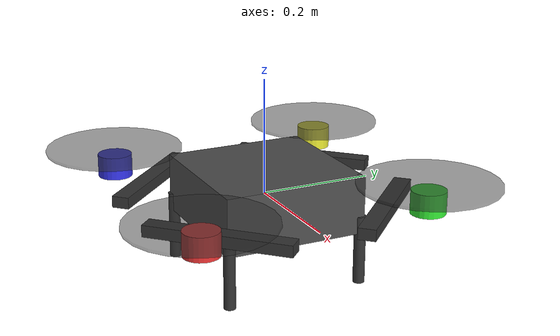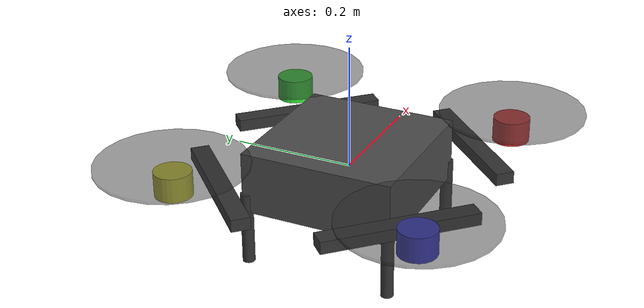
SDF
<?xml version="1.0"?>
<sdf version="1.6">
  <model name="quadrotor">
    <pose>0 0 0 0 0 0</pose>

    <link name="base_link">
      <inertial>
        <mass>2.0</mass>
        <inertia>
          <ixx>0.02</ixx>
          <iyy>0.02</iyy>
          <izz>0.04</izz>
          <ixy>0</ixy>
          <ixz>0</ixz>
          <iyz>0</iyz>
        </inertia>
      </inertial>

      <collision name="body_collision">
        <geometry>
          <box>
            <size>0.4 0.4 0.15</size>
          </box>
        </geometry>
      </collision>

      <!-- Main body -->
      <visual name="body_visual">
        <geometry>
          <box>
            <size>0.25 0.25 0.1</size>
          </box>
        </geometry>
        <material>
          <ambient>0.2 0.2 0.2 1</ambient>
          <diffuse>0.3 0.3 0.3 1</diffuse>
        </material>
      </visual>

      <!-- Arms -->
      <visual name="arm_front_right">
        <pose>0.15 -0.15 0 0 0 0.785</pose>
        <geometry>
          <box>
            <size>0.25 0.03 0.02</size>
          </box>
        </geometry>
        <material>
          <ambient>0.1 0.1 0.1 1</ambient>
          <diffuse>0.2 0.2 0.2 1</diffuse>
        </material>
      </visual>

      <visual name="arm_front_left">
        <pose>0.15 0.15 0 0 0 -0.785</pose>
        <geometry>
          <box>
            <size>0.25 0.03 0.02</size>
          </box>
        </geometry>
        <material>
          <ambient>0.1 0.1 0.1 1</ambient>
          <diffuse>0.2 0.2 0.2 1</diffuse>
        </material>
      </visual>

      <visual name="arm_back_right">
        <pose>-0.15 -0.15 0 0 0 -0.785</pose>
        <geometry>
          <box>
            <size>0.25 0.03 0.02</size>
          </box>
        </geometry>
        <material>
          <ambient>0.1 0.1 0.1 1</ambient>
          <diffuse>0.2 0.2 0.2 1</diffuse>
        </material>
      </visual>

      <visual name="arm_back_left">
        <pose>-0.15 0.15 0 0 0 0.785</pose>
        <geometry>
          <box>
            <size>0.25 0.03 0.02</size>
          </box>
        </geometry>
        <material>
          <ambient>0.1 0.1 0.1 1</ambient>
          <diffuse>0.2 0.2 0.2 1</diffuse>
        </material>
      </visual>

      <!-- Motors -->
      <visual name="motor_front_right">
        <pose>0.2 -0.2 0.02 0 0 0</pose>
        <geometry>
          <cylinder>
            <radius>0.03</radius>
            <length>0.04</length>
          </cylinder>
        </geometry>
        <material>
          <ambient>0.8 0.1 0.1 1</ambient>
          <diffuse>0.9 0.2 0.2 1</diffuse>
        </material>
      </visual>

      <visual name="motor_front_left">
        <pose>0.2 0.2 0.02 0 0 0</pose>
        <geometry>
          <cylinder>
            <radius>0.03</radius>
            <length>0.04</length>
          </cylinder>
        </geometry>
        <material>
          <ambient>0.1 0.8 0.1 1</ambient>
          <diffuse>0.2 0.9 0.2 1</diffuse>
        </material>
      </visual>

      <visual name="motor_back_right">
        <pose>-0.2 -0.2 0.02 0 0 0</pose>
        <geometry>
          <cylinder>
            <radius>0.03</radius>
            <length>0.04</length>
          </cylinder>
        </geometry>
        <material>
          <ambient>0.1 0.1 0.8 1</ambient>
          <diffuse>0.2 0.2 0.9 1</diffuse>
        </material>
      </visual>

      <visual name="motor_back_left">
        <pose>-0.2 0.2 0.02 0 0 0</pose>
        <geometry>
          <cylinder>
            <radius>0.03</radius>
            <length>0.04</length>
          </cylinder>
        </geometry>
        <material>
          <ambient>0.8 0.8 0.1 1</ambient>
          <diffuse>0.9 0.9 0.2 1</diffuse>
        </material>
      </visual>

      <!-- Propellers (visual only) -->
      <visual name="prop_front_right">
        <pose>0.2 -0.2 0.05 0 0 0</pose>
        <geometry>
          <cylinder>
            <radius>0.12</radius>
            <length>0.005</length>
          </cylinder>
        </geometry>
        <material>
          <ambient>0.1 0.1 0.1 0.5</ambient>
          <diffuse>0.2 0.2 0.2 0.5</diffuse>
        </material>
      </visual>

      <visual name="prop_front_left">
        <pose>0.2 0.2 0.05 0 0 0</pose>
        <geometry>
          <cylinder>
            <radius>0.12</radius>
            <length>0.005</length>
          </cylinder>
        </geometry>
        <material>
          <ambient>0.1 0.1 0.1 0.5</ambient>
          <diffuse>0.2 0.2 0.2 0.5</diffuse>
        </material>
      </visual>

      <visual name="prop_back_right">
        <pose>-0.2 -0.2 0.05 0 0 0</pose>
        <geometry>
          <cylinder>
            <radius>0.12</radius>
            <length>0.005</length>
          </cylinder>
        </geometry>
        <material>
          <ambient>0.1 0.1 0.1 0.5</ambient>
          <diffuse>0.2 0.2 0.2 0.5</diffuse>
        </material>
      </visual>

      <visual name="prop_back_left">
        <pose>-0.2 0.2 0.05 0 0 0</pose>
        <geometry>
          <cylinder>
            <radius>0.12</radius>
            <length>0.005</length>
          </cylinder>
        </geometry>
        <material>
          <ambient>0.1 0.1 0.1 0.5</ambient>
          <diffuse>0.2 0.2 0.2 0.5</diffuse>
        </material>
      </visual>

      <!-- Landing gear -->
      <visual name="landing_gear_fl">
        <pose>0.12 0.12 -0.08 0 0 0</pose>
        <geometry>
          <cylinder>
            <radius>0.01</radius>
            <length>0.12</length>
          </cylinder>
        </geometry>
        <material>
          <ambient>0.1 0.1 0.1 1</ambient>
          <diffuse>0.2 0.2 0.2 1</diffuse>
        </material>
      </visual>

      <visual name="landing_gear_fr">
        <pose>0.12 -0.12 -0.08 0 0 0</pose>
        <geometry>
          <cylinder>
            <radius>0.01</radius>
            <length>0.12</length>
          </cylinder>
        </geometry>
        <material>
          <ambient>0.1 0.1 0.1 1</ambient>
          <diffuse>0.2 0.2 0.2 1</diffuse>
        </material>
      </visual>

      <visual name="landing_gear_bl">
        <pose>-0.12 0.12 -0.08 0 0 0</pose>
        <geometry>
          <cylinder>
            <radius>0.01</radius>
            <length>0.12</length>
          </cylinder>
        </geometry>
        <material>
          <ambient>0.1 0.1 0.1 1</ambient>
          <diffuse>0.2 0.2 0.2 1</diffuse>
        </material>
      </visual>

      <visual name="landing_gear_br">
        <pose>-0.12 -0.12 -0.08 0 0 0</pose>
        <geometry>
          <cylinder>
            <radius>0.01</radius>
            <length>0.12</length>
          </cylinder>
        </geometry>
        <material>
          <ambient>0.1 0.1 0.1 1</ambient>
          <diffuse>0.2 0.2 0.2 1</diffuse>
        </material>
      </visual>

      <!-- IMU sensor -->
      <sensor name="imu" type="imu">
        <always_on>true</always_on>
        <update_rate>200</update_rate>
        <imu>
          <angular_velocity>
            <x><noise type="gaussian"><mean>0</mean><stddev>0.001</stddev></noise></x>
            <y><noise type="gaussian"><mean>0</mean><stddev>0.001</stddev></noise></y>
            <z><noise type="gaussian"><mean>0</mean><stddev>0.001</stddev></noise></z>
          </angular_velocity>
          <linear_acceleration>
            <x><noise type="gaussian"><mean>0</mean><stddev>0.01</stddev></noise></x>
            <y><noise type="gaussian"><mean>0</mean><stddev>0.01</stddev></noise></y>
            <z><noise type="gaussian"><mean>0</mean><stddev>0.01</stddev></noise></z>
          </linear_acceleration>
        </imu>
      </sensor>

    </link>

    <!-- Note: Controller plugin disabled - use ArduPilot SITL for control -->
    <!-- To enable: build quadrotor_controller_plugin and uncomment below -->

  </model>
</sdf>
